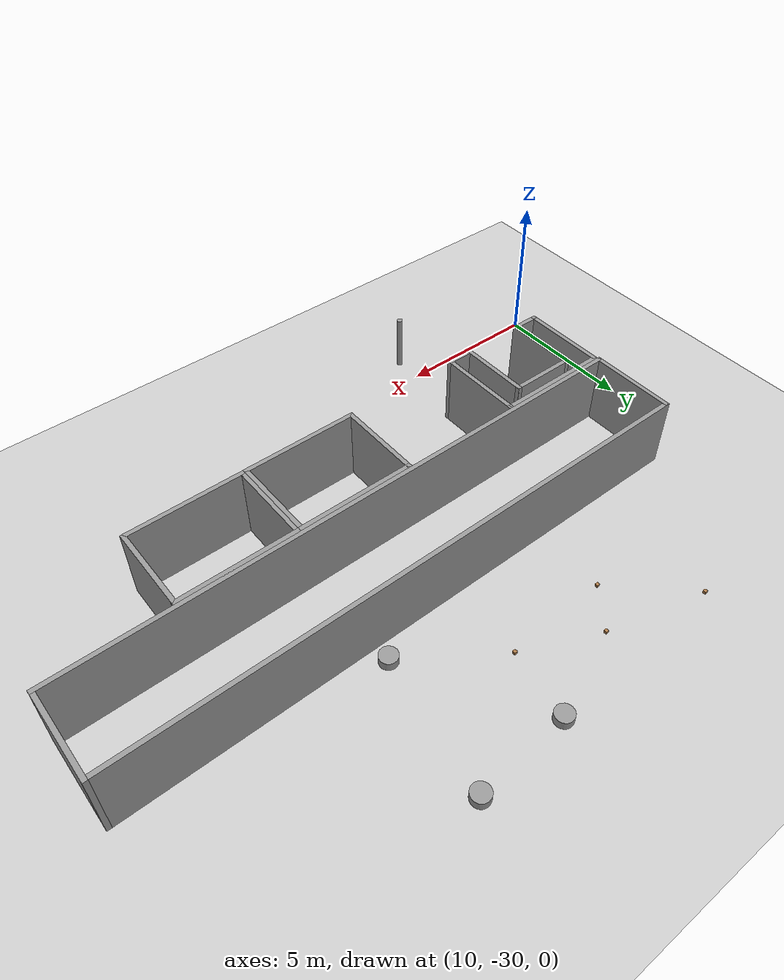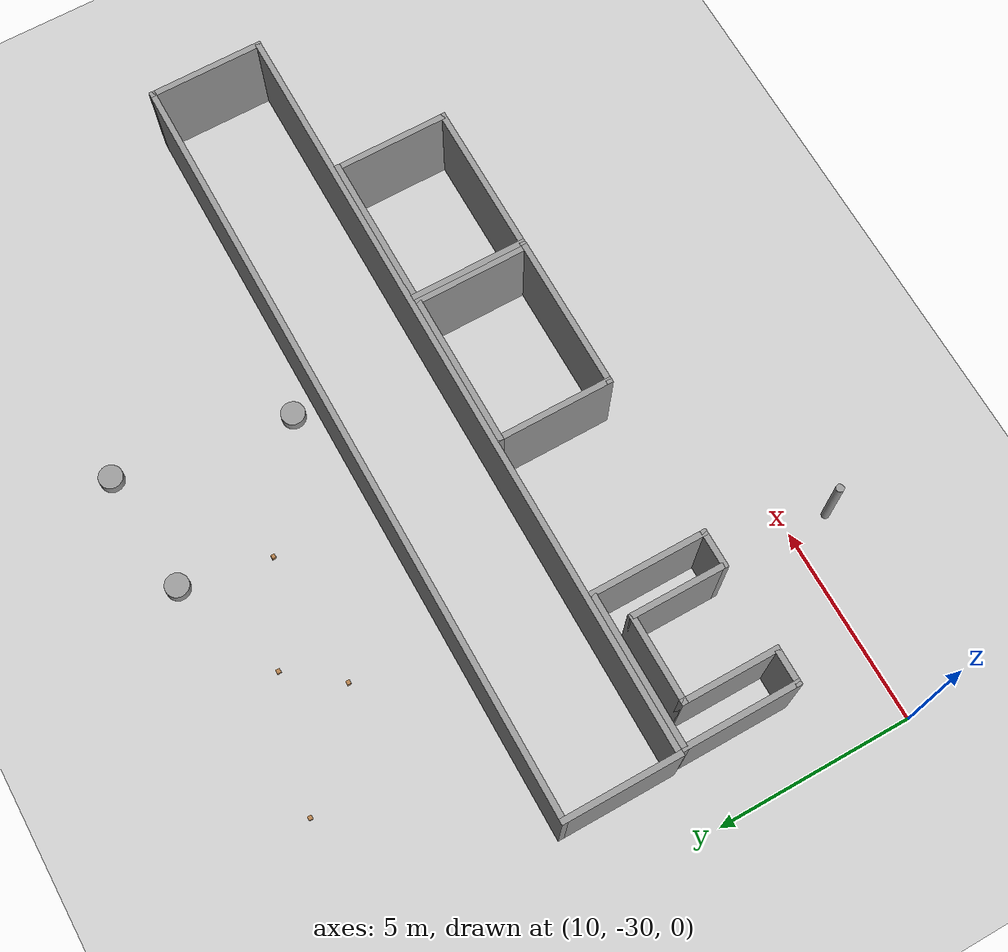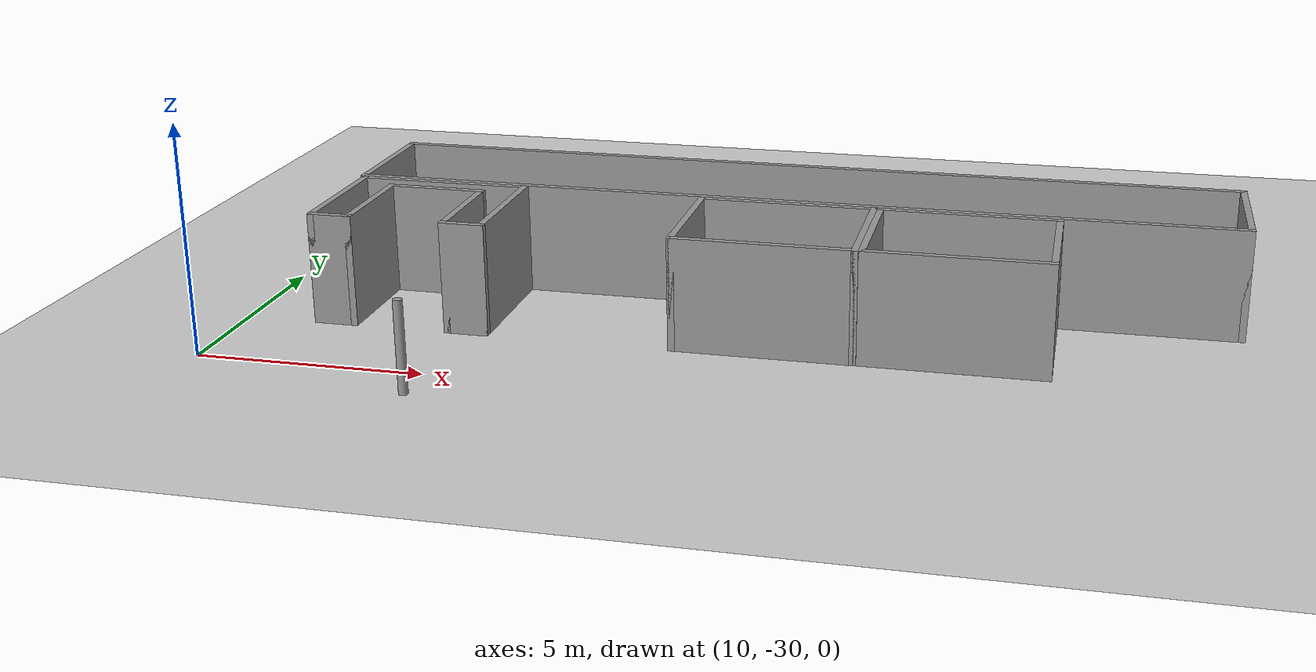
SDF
<sdf version="1.6">
 <world name="default">
  <model name="ground_plane">
   <static>1</static>
   <link name="link">
    <collision name="collision">
     <geometry><plane><normal>0 0 1</normal><size>105 105</size></plane></geometry>
     <surface>
      <contact><collide_bitmask>65535</collide_bitmask></contact>
      <friction><ode><mu>100</mu><mu2>50</mu2></ode></friction>
     </surface>
    </collision>
    <visual name="visual">
     <cast_shadows>0</cast_shadows>
     <geometry><plane><normal>0 0 1</normal><size>105 105</size></plane></geometry>
     <material>
      <script><uri>file://media/materials/scripts/gazebo.material</uri><name>Gazebo/Grey</name></script>
     </material>
    </visual>
   </link>
  </model>
  <model name="base3x20_3">
   <pose>21.5045 -23.229 0 0 -0 0</pose>
   <link name="Wall_16">
    <collision name="Wall_16_Collision">
     <geometry><box><size>3 0.15 2.5</size></box></geometry>
     <pose>0 0 1.25 0 -0 0</pose>
    </collision>
    <visual name="Wall_16_Visual">
     <pose>0 0 1.25 0 -0 0</pose>
     <geometry><box><size>3 0.15 2.5</size></box></geometry>
     <material>
      <script><uri>file://media/materials/scripts/gazebo.material</uri><name>Gazebo/Grey</name></script>
      <ambient>1 1 1 1</ambient>
     </material>
     <meta><layer>0</layer></meta>
    </visual>
    <pose>-9.925 -0 0 0 -0 -1.5708</pose>
   </link>
   <link name="Wall_17">
    <collision name="Wall_17_Collision">
     <geometry><box><size>20 0.15 2.5</size></box></geometry>
     <pose>0 0 1.25 0 -0 0</pose>
    </collision>
    <visual name="Wall_17_Visual">
     <pose>0 0 1.25 0 -0 0</pose>
     <geometry><box><size>20 0.15 2.5</size></box></geometry>
     <material>
      <script><uri>file://media/materials/scripts/gazebo.material</uri><name>Gazebo/Grey</name></script>
      <ambient>1 1 1 1</ambient>
     </material>
     <meta><layer>0</layer></meta>
    </visual>
    <pose>-0 -1.425 0 0 -0 0</pose>
   </link>
   <link name="Wall_18">
    <collision name="Wall_18_Collision">
     <geometry><box><size>3 0.15 2.5</size></box></geometry>
     <pose>0 0 1.25 0 -0 0</pose>
    </collision>
    <visual name="Wall_18_Visual">
     <pose>0 0 1.25 0 -0 0</pose>
     <geometry><box><size>3 0.15 2.5</size></box></geometry>
     <material>
      <script><uri>file://media/materials/scripts/gazebo.material</uri><name>Gazebo/Grey</name></script>
      <ambient>1 1 1 1</ambient>
     </material>
     <meta><layer>0</layer></meta>
    </visual>
    <pose>9.925 -0 0 0 -0 1.5708</pose>
   </link>
   <link name="Wall_19">
    <collision name="Wall_19_Collision">
     <geometry><box><size>20 0.15 2.5</size></box></geometry>
     <pose>0 0 1.25 0 -0 0</pose>
    </collision>
    <visual name="Wall_19_Visual">
     <pose>0 0 1.25 0 -0 0</pose>
     <geometry><box><size>20 0.15 2.5</size></box></geometry>
     <material>
      <script><uri>file://media/materials/scripts/gazebo.material</uri><name>Gazebo/Grey</name></script>
      <ambient>1 1 1 1</ambient>
     </material>
     <meta><layer>0</layer></meta>
    </visual>
    <pose>-0 1.425 0 0 -0 3.14159</pose>
   </link>
   <static>1</static>
  </model>
  <model name="base3x4_18">
   <pose>25.5531 -26.2178 0 0 -0 0</pose>
   <link name="Wall_18">
    <collision name="Wall_18_Collision">
     <geometry><box><size>3 0.15 2.5</size></box></geometry>
     <pose>0 0 1.25 0 -0 0</pose>
    </collision>
    <visual name="Wall_18_Visual">
     <pose>0 0 1.25 0 -0 0</pose>
     <geometry><box><size>3 0.15 2.5</size></box></geometry>
     <material>
      <script><uri>file://media/materials/scripts/gazebo.material</uri><name>Gazebo/Grey</name></script>
      <ambient>1 1 1 1</ambient>
     </material>
     <meta><layer>0</layer></meta>
    </visual>
    <pose>-1.925 -0 0 0 -0 -1.5708</pose>
   </link>
   <link name="Wall_19">
    <collision name="Wall_19_Collision">
     <geometry><box><size>4 0.15 2.5</size></box></geometry>
     <pose>0 0 1.25 0 -0 0</pose>
    </collision>
    <visual name="Wall_19_Visual">
     <pose>0 0 1.25 0 -0 0</pose>
     <geometry><box><size>4 0.15 2.5</size></box></geometry>
     <material>
      <script><uri>file://media/materials/scripts/gazebo.material</uri><name>Gazebo/Grey</name></script>
      <ambient>1 1 1 1</ambient>
     </material>
     <meta><layer>0</layer></meta>
    </visual>
    <pose>-0 -1.425 0 0 -0 0</pose>
   </link>
   <link name="Wall_20">
    <collision name="Wall_20_Collision">
     <geometry><box><size>3 0.15 2.5</size></box></geometry>
     <pose>0 0 1.25 0 -0 0</pose>
    </collision>
    <visual name="Wall_20_Visual">
     <pose>0 0 1.25 0 -0 0</pose>
     <geometry><box><size>3 0.15 2.5</size></box></geometry>
     <material>
      <script><uri>file://media/materials/scripts/gazebo.material</uri><name>Gazebo/Grey</name></script>
      <ambient>1 1 1 1</ambient>
     </material>
     <meta><layer>0</layer></meta>
    </visual>
    <pose>1.925 -0 0 0 -0 1.5708</pose>
   </link>
   <link name="Wall_21">
    <collision name="Wall_21_Collision">
     <geometry><box><size>4 0.15 2.5</size></box></geometry>
     <pose>0 0 1.25 0 -0 0</pose>
    </collision>
    <visual name="Wall_21_Visual">
     <pose>0 0 1.25 0 -0 0</pose>
     <geometry><box><size>4 0.15 2.5</size></box></geometry>
     <material>
      <script><uri>file://media/materials/scripts/gazebo.material</uri><name>Gazebo/Grey</name></script>
      <ambient>1 1 1 1</ambient>
     </material>
     <meta><layer>0</layer></meta>
    </visual>
    <pose>-0 1.425 0 0 -0 3.14159</pose>
   </link>
   <static>1</static>
  </model>
  <model name="base3x4_19">
   <pose>21.5621 -26.2254 0 0 -0 0</pose>
   <link name="Wall_18">
    <collision name="Wall_18_Collision">
     <geometry><box><size>3 0.15 2.5</size></box></geometry>
     <pose>0 0 1.25 0 -0 0</pose>
    </collision>
    <visual name="Wall_18_Visual">
     <pose>0 0 1.25 0 -0 0</pose>
     <geometry><box><size>3 0.15 2.5</size></box></geometry>
     <material>
      <script><uri>file://media/materials/scripts/gazebo.material</uri><name>Gazebo/Grey</name></script>
      <ambient>1 1 1 1</ambient>
     </material>
     <meta><layer>0</layer></meta>
    </visual>
    <pose>-1.925 -0 0 0 -0 -1.5708</pose>
   </link>
   <link name="Wall_19">
    <collision name="Wall_19_Collision">
     <geometry><box><size>4 0.15 2.5</size></box></geometry>
     <pose>0 0 1.25 0 -0 0</pose>
    </collision>
    <visual name="Wall_19_Visual">
     <pose>0 0 1.25 0 -0 0</pose>
     <geometry><box><size>4 0.15 2.5</size></box></geometry>
     <material>
      <script><uri>file://media/materials/scripts/gazebo.material</uri><name>Gazebo/Grey</name></script>
      <ambient>1 1 1 1</ambient>
     </material>
     <meta><layer>0</layer></meta>
    </visual>
    <pose>-0 -1.425 0 0 -0 0</pose>
   </link>
   <link name="Wall_20">
    <collision name="Wall_20_Collision">
     <geometry><box><size>3 0.15 2.5</size></box></geometry>
     <pose>0 0 1.25 0 -0 0</pose>
    </collision>
    <visual name="Wall_20_Visual">
     <pose>0 0 1.25 0 -0 0</pose>
     <geometry><box><size>3 0.15 2.5</size></box></geometry>
     <material>
      <script><uri>file://media/materials/scripts/gazebo.material</uri><name>Gazebo/Grey</name></script>
      <ambient>1 1 1 1</ambient>
     </material>
     <meta><layer>0</layer></meta>
    </visual>
    <pose>1.925 -0 0 0 -0 1.5708</pose>
   </link>
   <link name="Wall_21">
    <collision name="Wall_21_Collision">
     <geometry><box><size>4 0.15 2.5</size></box></geometry>
     <pose>0 0 1.25 0 -0 0</pose>
    </collision>
    <visual name="Wall_21_Visual">
     <pose>0 0 1.25 0 -0 0</pose>
     <geometry><box><size>4 0.15 2.5</size></box></geometry>
     <material>
      <script><uri>file://media/materials/scripts/gazebo.material</uri><name>Gazebo/Grey</name></script>
      <ambient>1 1 1 1</ambient>
     </material>
     <meta><layer>0</layer></meta>
    </visual>
    <pose>-0 1.425 0 0 -0 3.14159</pose>
   </link>
   <static>1</static>
  </model>
  <model name="box_u_v4X3X2.5_4">
   <pose>13.5763 -26.2265 0 0 -0 0</pose>
   <link name="Wall_30">
    <collision name="Wall_30_Collision">
     <geometry><box><size>3 0.15 2.5</size></box></geometry>
     <pose>0 0 1.25 0 -0 0</pose>
    </collision>
    <visual name="Wall_30_Visual">
     <pose>0 0 1.25 0 -0 0</pose>
     <geometry><box><size>3 0.15 2.5</size></box></geometry>
     <material>
      <script><uri>file://media/materials/scripts/gazebo.material</uri><name>Gazebo/Grey</name></script>
      <ambient>1 1 1 1</ambient>
     </material>
     <meta><layer>0</layer></meta>
    </visual>
    <pose>-1.925 0 0 0 -0 -1.5708</pose>
   </link>
   <link name="Wall_32">
    <collision name="Wall_32_Collision">
     <geometry><box><size>4 0.15 2.5</size></box></geometry>
     <pose>0 0 1.25 0 -0 0</pose>
    </collision>
    <visual name="Wall_32_Visual">
     <pose>0 0 1.25 0 -0 0</pose>
     <geometry><box><size>4 0.15 2.5</size></box></geometry>
     <material>
      <script><uri>file://media/materials/scripts/gazebo.material</uri><name>Gazebo/Grey</name></script>
      <ambient>1 1 1 1</ambient>
     </material>
     <meta><layer>0</layer></meta>
    </visual>
    <pose>0 1.425 0 0 -0 0</pose>
   </link>
   <link name="Wall_33">
    <collision name="Wall_33_Collision">
     <geometry><box><size>3 0.15 2.5</size></box></geometry>
     <pose>0 0 1.25 0 -0 0</pose>
    </collision>
    <visual name="Wall_33_Visual">
     <pose>0 0 1.25 0 -0 0</pose>
     <geometry><box><size>3 0.15 2.5</size></box></geometry>
     <material>
      <script><uri>file://media/materials/scripts/gazebo.material</uri><name>Gazebo/Grey</name></script>
      <ambient>1 1 1 1</ambient>
     </material>
     <meta><layer>0</layer></meta>
    </visual>
    <pose>1.925 0 0 0 -0 -1.5708</pose>
   </link>
   <link name="Wall_34">
    <collision name="Wall_34_Collision">
     <geometry><box><size>1 0.15 2.5</size></box></geometry>
     <pose>0 0 1.25 0 -0 0</pose>
    </collision>
    <visual name="Wall_34_Visual">
     <pose>0 0 1.25 0 -0 0</pose>
     <geometry><box><size>1 0.15 2.5</size></box></geometry>
     <material>
      <script><uri>file://media/materials/scripts/gazebo.material</uri><name>Gazebo/Grey</name></script>
      <ambient>1 1 1 1</ambient>
     </material>
     <meta><layer>0</layer></meta>
    </visual>
    <pose>1.5 -1.425 0 0 -0 3.14159</pose>
   </link>
   <link name="Wall_35">
    <collision name="Wall_35_Collision">
     <geometry><box><size>2.5 0.15 2.5</size></box></geometry>
     <pose>0 0 1.25 0 -0 0</pose>
    </collision>
    <visual name="Wall_35_Visual">
     <pose>0 0 1.25 0 -0 0</pose>
     <geometry><box><size>2.5 0.15 2.5</size></box></geometry>
     <material>
      <script><uri>file://media/materials/scripts/gazebo.material</uri><name>Gazebo/Grey</name></script>
      <ambient>1 1 1 1</ambient>
     </material>
     <meta><layer>0</layer></meta>
    </visual>
    <pose>1.075 -0.25 0 0 -0 1.5708</pose>
   </link>
   <link name="Wall_37">
    <collision name="Wall_37_Collision">
     <geometry><box><size>1 0.15 2.5</size></box></geometry>
     <pose>0 0 1.25 0 -0 0</pose>
    </collision>
    <visual name="Wall_37_Visual">
     <pose>0 0 1.25 0 -0 0</pose>
     <geometry><box><size>1 0.15 2.5</size></box></geometry>
     <material>
      <script><uri>file://media/materials/scripts/gazebo.material</uri><name>Gazebo/Grey</name></script>
      <ambient>1 1 1 1</ambient>
     </material>
     <meta><layer>0</layer></meta>
    </visual>
    <pose>-1.5 -1.425 0 0 -0 0</pose>
   </link>
   <link name="Wall_38">
    <collision name="Wall_38_Collision">
     <geometry><box><size>2.5 0.15 2.5</size></box></geometry>
     <pose>0 0 1.25 0 -0 0</pose>
    </collision>
    <visual name="Wall_38_Visual">
     <pose>0 0 1.25 0 -0 0</pose>
     <geometry><box><size>2.5 0.15 2.5</size></box></geometry>
     <material>
      <script><uri>file://media/materials/scripts/gazebo.material</uri><name>Gazebo/Grey</name></script>
      <ambient>1 1 1 1</ambient>
     </material>
     <meta><layer>0</layer></meta>
    </visual>
    <pose>-1.075 -0.25 0 0 -0 1.5708</pose>
   </link>
   <link name="Wall_39">
    <collision name="Wall_39_Collision">
     <geometry><box><size>2.3 0.15 2.5</size></box></geometry>
     <pose>0 0 1.25 0 -0 0</pose>
    </collision>
    <visual name="Wall_39_Visual">
     <pose>0 0 1.25 0 -0 0</pose>
     <geometry><box><size>2.3 0.15 2.5</size></box></geometry>
     <material>
      <script><uri>file://media/materials/scripts/gazebo.material</uri><name>Gazebo/Grey</name></script>
      <ambient>1 1 1 1</ambient>
     </material>
     <meta><layer>0</layer></meta>
    </visual>
    <pose>0 0.925 0 0 -0 0</pose>
   </link>
   <static>1</static>
  </model>
  <model name="unit_cylinder30x30cm_2_clone">
   <link name="link">
    <inertial>
     <mass>1</mass>
     <inertia><ixx>0.145833</ixx><ixy>0</ixy><ixz>0</ixz><iyy>0.145833</iyy><iyz>0</iyz><izz>0.125</izz></inertia>
    </inertial>
    <visual name="visual">
     <geometry><cylinder><radius>0.3</radius><length>0.3</length></cylinder></geometry>
     <material>
      <script><name>Gazebo/Grey</name><uri>file://media/materials/scripts/gazebo.material</uri></script>
      <shader type="vertex"><normal_map>__default__</normal_map></shader>
      <ambient>0.3 0.3 0.3 1</ambient>
      <diffuse>0.7 0.7 0.7 1</diffuse>
      <specular>0.01 0.01 0.01 1</specular>
      <emissive>0 0 0 1</emissive>
     </material>
    </visual>
    <collision name="collision">
     <geometry><cylinder><radius>0.3</radius><length>0.3</length></cylinder></geometry>
     <surface>
      <friction>
       <ode><mu>1</mu><mu2>1</mu2><fdir1>0 0 0</fdir1><slip1>0</slip1><slip2>0</slip2></ode>
       <torsional>
        <coefficient>1</coefficient>
        <patch_radius>0</patch_radius>
        <surface_radius>0</surface_radius>
        <use_patch_radius>1</use_patch_radius>
        <ode><slip>0</slip></ode>
       </torsional>
      </friction>
      <bounce><restitution_coefficient>0</restitution_coefficient><threshold>1e+06</threshold></bounce>
      <contact>
       <collide_without_contact>0</collide_without_contact>
       <collide_without_contact_bitmask>1</collide_without_contact_bitmask>
       <collide_bitmask>1</collide_bitmask>
       <ode>
        <soft_cfm>0</soft_cfm>
        <soft_erp>0.2</soft_erp>
        <kp>1e+13</kp>
        <kd>1</kd>
        <max_vel>0.01</max_vel>
        <min_depth>0</min_depth>
       </ode>
       <bullet>
        <split_impulse>1</split_impulse>
        <split_impulse_penetration_threshold>-0.01</split_impulse_penetration_threshold>
        <soft_cfm>0</soft_cfm>
        <soft_erp>0.2</soft_erp>
        <kp>1e+13</kp>
        <kd>1</kd>
       </bullet>
      </contact>
     </surface>
    </collision>
   </link>
   <static>0</static>
   <pose>23.9553 -16.711 0.149805 -0 -0 -0</pose>
  </model>
  <model name="unit_cylinder30x30cm_2_clone_0">
   <link name="link">
    <inertial>
     <mass>1</mass>
     <inertia><ixx>0.145833</ixx><ixy>0</ixy><ixz>0</ixz><iyy>0.145833</iyy><iyz>0</iyz><izz>0.125</izz></inertia>
    </inertial>
    <visual name="visual">
     <geometry><cylinder><radius>0.3</radius><length>0.3</length></cylinder></geometry>
     <material>
      <script><name>Gazebo/Grey</name><uri>file://media/materials/scripts/gazebo.material</uri></script>
      <shader type="vertex"><normal_map>__default__</normal_map></shader>
      <ambient>0.3 0.3 0.3 1</ambient>
      <diffuse>0.7 0.7 0.7 1</diffuse>
      <specular>0.01 0.01 0.01 1</specular>
      <emissive>0 0 0 1</emissive>
     </material>
    </visual>
    <collision name="collision">
     <geometry><cylinder><radius>0.3</radius><length>0.3</length></cylinder></geometry>
     <surface>
      <friction>
       <ode><mu>1</mu><mu2>1</mu2><fdir1>0 0 0</fdir1><slip1>0</slip1><slip2>0</slip2></ode>
       <torsional>
        <coefficient>1</coefficient>
        <patch_radius>0</patch_radius>
        <surface_radius>0</surface_radius>
        <use_patch_radius>1</use_patch_radius>
        <ode><slip>0</slip></ode>
       </torsional>
      </friction>
      <bounce><restitution_coefficient>0</restitution_coefficient><threshold>1e+06</threshold></bounce>
      <contact>
       <collide_without_contact>0</collide_without_contact>
       <collide_without_contact_bitmask>1</collide_without_contact_bitmask>
       <collide_bitmask>1</collide_bitmask>
       <ode>
        <soft_cfm>0</soft_cfm>
        <soft_erp>0.2</soft_erp>
        <kp>1e+13</kp>
        <kd>1</kd>
        <max_vel>0.01</max_vel>
        <min_depth>0</min_depth>
       </ode>
       <bullet>
        <split_impulse>1</split_impulse>
        <split_impulse_penetration_threshold>-0.01</split_impulse_penetration_threshold>
        <soft_cfm>0</soft_cfm>
        <soft_erp>0.2</soft_erp>
        <kp>1e+13</kp>
        <kd>1</kd>
       </bullet>
      </contact>
     </surface>
    </collision>
   </link>
   <static>0</static>
   <pose>20.8101 -16.9259 0.149805 -0 -0 -0</pose>
  </model>
  <model name="unit_cylinder30x30cm_2_clone_5">
   <link name="link">
    <inertial>
     <mass>1</mass>
     <inertia><ixx>0.145833</ixx><ixy>0</ixy><ixz>0</ixz><iyy>0.145833</iyy><iyz>0</iyz><izz>0.125</izz></inertia>
    </inertial>
    <visual name="visual">
     <geometry><cylinder><radius>0.3</radius><length>0.3</length></cylinder></geometry>
     <material>
      <script><name>Gazebo/Grey</name><uri>file://media/materials/scripts/gazebo.material</uri></script>
      <shader type="vertex"><normal_map>__default__</normal_map></shader>
      <ambient>0.3 0.3 0.3 1</ambient>
      <diffuse>0.7 0.7 0.7 1</diffuse>
      <specular>0.01 0.01 0.01 1</specular>
      <emissive>0 0 0 1</emissive>
     </material>
    </visual>
    <collision name="collision">
     <geometry><cylinder><radius>0.3</radius><length>0.3</length></cylinder></geometry>
     <surface>
      <friction>
       <ode><mu>1</mu><mu2>1</mu2><fdir1>0 0 0</fdir1><slip1>0</slip1><slip2>0</slip2></ode>
       <torsional>
        <coefficient>1</coefficient>
        <patch_radius>0</patch_radius>
        <surface_radius>0</surface_radius>
        <use_patch_radius>1</use_patch_radius>
        <ode><slip>0</slip></ode>
       </torsional>
      </friction>
      <bounce><restitution_coefficient>0</restitution_coefficient><threshold>1e+06</threshold></bounce>
      <contact>
       <collide_without_contact>0</collide_without_contact>
       <collide_without_contact_bitmask>1</collide_without_contact_bitmask>
       <collide_bitmask>1</collide_bitmask>
       <ode>
        <soft_cfm>0</soft_cfm>
        <soft_erp>0.2</soft_erp>
        <kp>1e+13</kp>
        <kd>1</kd>
        <max_vel>0.01</max_vel>
        <min_depth>0</min_depth>
       </ode>
       <bullet>
        <split_impulse>1</split_impulse>
        <split_impulse_penetration_threshold>-0.01</split_impulse_penetration_threshold>
        <soft_cfm>0</soft_cfm>
        <soft_erp>0.2</soft_erp>
        <kp>1e+13</kp>
        <kd>1</kd>
       </bullet>
      </contact>
     </surface>
    </collision>
   </link>
   <static>0</static>
   <pose>23.2879 -21.1942 0.149805 -0 -0 -0</pose>
  </model>
  <model name="wood_cube_10cm_4_clone_0">
   <link name="link">
    <pose>0 0 0.05 0 -0 0</pose>
    <inertial>
     <mass>0.5167</mass>
     <inertia>
      <ixx>0.000861167</ixx>
      <ixy>0</ixy>
      <ixz>0</ixz>
      <iyy>0.000861167</iyy>
      <iyz>0</iyz>
      <izz>0.000861167</izz>
     </inertia>
    </inertial>
    <collision name="collision">
     <geometry><box><size>0.1 0.1 0.1</size></box></geometry>
     <surface>
      <contact>
       <poissons_ratio>0.347</poissons_ratio>
       <elastic_modulus>8.8e+09</elastic_modulus>
       <ode><kp>100000</kp><kd>100</kd><max_vel>100</max_vel><min_depth>0.001</min_depth></ode>
      </contact>
      <friction>
       <torsional>
        <coefficient>1</coefficient>
        <use_patch_radius>0</use_patch_radius>
        <surface_radius>0.01</surface_radius>
       </torsional>
      </friction>
     </surface>
    </collision>
    <visual name="visual">
     <geometry><box><size>0.1 0.1 0.1</size></box></geometry>
     <material>
      <script><uri>file://media/materials/scripts/gazebo.material</uri><name>Gazebo/Wood</name></script>
     </material>
    </visual>
   </link>
   <pose>16.91 -19.3363 -0.001013 0 -0 0</pose>
  </model>
  <model name="wood_cube_10cm_4_clone_2">
   <link name="link">
    <pose>0 0 0.05 0 -0 0</pose>
    <inertial>
     <mass>0.5167</mass>
     <inertia>
      <ixx>0.000861167</ixx>
      <ixy>0</ixy>
      <ixz>0</ixz>
      <iyy>0.000861167</iyy>
      <iyz>0</iyz>
      <izz>0.000861167</izz>
     </inertia>
    </inertial>
    <collision name="collision">
     <geometry><box><size>0.1 0.1 0.1</size></box></geometry>
     <surface>
      <contact>
       <poissons_ratio>0.347</poissons_ratio>
       <elastic_modulus>8.8e+09</elastic_modulus>
       <ode><kp>100000</kp><kd>100</kd><max_vel>100</max_vel><min_depth>0.001</min_depth></ode>
      </contact>
      <friction>
       <torsional>
        <coefficient>1</coefficient>
        <use_patch_radius>0</use_patch_radius>
        <surface_radius>0.01</surface_radius>
       </torsional>
      </friction>
     </surface>
    </collision>
    <visual name="visual">
     <geometry><box><size>0.1 0.1 0.1</size></box></geometry>
     <material>
      <script><uri>file://media/materials/scripts/gazebo.material</uri><name>Gazebo/Wood</name></script>
     </material>
    </visual>
   </link>
   <pose>20.4042 -19.1888 -0.001013 0 -0 0</pose>
  </model>
  <model name="wood_cube_10cm_4_clone_3">
   <link name="link">
    <pose>0 0 0.05 0 -0 0</pose>
    <inertial>
     <mass>0.5167</mass>
     <inertia>
      <ixx>0.000861167</ixx>
      <ixy>0</ixy>
      <ixz>0</ixz>
      <iyy>0.000861167</iyy>
      <iyz>0</iyz>
      <izz>0.000861167</izz>
     </inertia>
    </inertial>
    <collision name="collision">
     <geometry><box><size>0.1 0.1 0.1</size></box></geometry>
     <surface>
      <contact>
       <poissons_ratio>0.347</poissons_ratio>
       <elastic_modulus>8.8e+09</elastic_modulus>
       <ode><kp>100000</kp><kd>100</kd><max_vel>100</max_vel><min_depth>0.001</min_depth></ode>
      </contact>
      <friction>
       <torsional>
        <coefficient>1</coefficient>
        <use_patch_radius>0</use_patch_radius>
        <surface_radius>0.01</surface_radius>
       </torsional>
      </friction>
     </surface>
    </collision>
    <visual name="visual">
     <geometry><box><size>0.1 0.1 0.1</size></box></geometry>
     <material>
      <script><uri>file://media/materials/scripts/gazebo.material</uri><name>Gazebo/Wood</name></script>
     </material>
    </visual>
   </link>
   <pose>14.6275 -17.183 -0.001013 0 -0 0</pose>
  </model>
  <model name="wood_cube_10cm_4_clone_4">
   <link name="link">
    <pose>0 0 0.05 0 -0 0</pose>
    <inertial>
     <mass>0.5167</mass>
     <inertia>
      <ixx>0.000861167</ixx>
      <ixy>0</ixy>
      <ixz>0</ixz>
      <iyy>0.000861167</iyy>
      <iyz>0</iyz>
      <izz>0.000861167</izz>
     </inertia>
    </inertial>
    <collision name="collision">
     <geometry><box><size>0.1 0.1 0.1</size></box></geometry>
     <surface>
      <contact>
       <poissons_ratio>0.347</poissons_ratio>
       <elastic_modulus>8.8e+09</elastic_modulus>
       <ode><kp>100000</kp><kd>100</kd><max_vel>100</max_vel><min_depth>0.001</min_depth></ode>
      </contact>
      <friction>
       <torsional>
        <coefficient>1</coefficient>
        <use_patch_radius>0</use_patch_radius>
        <surface_radius>0.01</surface_radius>
       </torsional>
      </friction>
     </surface>
    </collision>
    <visual name="visual">
     <geometry><box><size>0.1 0.1 0.1</size></box></geometry>
     <material>
      <script><uri>file://media/materials/scripts/gazebo.material</uri><name>Gazebo/Wood</name></script>
     </material>
    </visual>
   </link>
   <pose>17.9195 -18.0616 -0.001013 0 -0 0</pose>
  </model>
  <model name="unit_cylinder_r0.1_l2m_0_clone_3">
   <link name="link">
    <inertial>
     <mass>1</mass>
     <inertia><ixx>0.145833</ixx><ixy>0</ixy><ixz>0</ixz><iyy>0.145833</iyy><iyz>0</iyz><izz>0.125</izz></inertia>
    </inertial>
    <visual name="visual">
     <geometry><cylinder><radius>0.1</radius><length>2</length></cylinder></geometry>
     <material>
      <script><name>Gazebo/Grey</name><uri>file://media/materials/scripts/gazebo.material</uri></script>
      <shader type="vertex"><normal_map>__default__</normal_map></shader>
      <ambient>0.3 0.3 0.3 1</ambient>
      <diffuse>0.7 0.7 0.7 1</diffuse>
      <specular>0.01 0.01 0.01 1</specular>
      <emissive>0 0 0 1</emissive>
     </material>
    </visual>
    <collision name="collision">
     <geometry><cylinder><radius>0.1</radius><length>2</length></cylinder></geometry>
     <surface>
      <friction>
       <ode><mu>1</mu><mu2>1</mu2><fdir1>0 0 0</fdir1><slip1>0</slip1><slip2>0</slip2></ode>
       <torsional>
        <coefficient>1</coefficient>
        <patch_radius>0</patch_radius>
        <surface_radius>0</surface_radius>
        <use_patch_radius>1</use_patch_radius>
        <ode><slip>0</slip></ode>
       </torsional>
      </friction>
      <bounce><restitution_coefficient>0</restitution_coefficient><threshold>1e+06</threshold></bounce>
      <contact>
       <collide_without_contact>0</collide_without_contact>
       <collide_without_contact_bitmask>1</collide_without_contact_bitmask>
       <collide_bitmask>1</collide_bitmask>
       <ode>
        <soft_cfm>0</soft_cfm>
        <soft_erp>0.2</soft_erp>
        <kp>1e+13</kp>
        <kd>1</kd>
        <max_vel>0.01</max_vel>
        <min_depth>0</min_depth>
       </ode>
       <bullet>
        <split_impulse>1</split_impulse>
        <split_impulse_penetration_threshold>-0.01</split_impulse_penetration_threshold>
        <soft_cfm>0</soft_cfm>
        <soft_erp>0.2</soft_erp>
        <kp>1e+13</kp>
        <kd>1</kd>
       </bullet>
      </contact>
     </surface>
    </collision>
   </link>
   <static>0</static>
   <pose>15.0004 -30.9994 0.999808 -9e-06 1.9e-05 -0.032086</pose>
  </model>
 </world>
</sdf>
